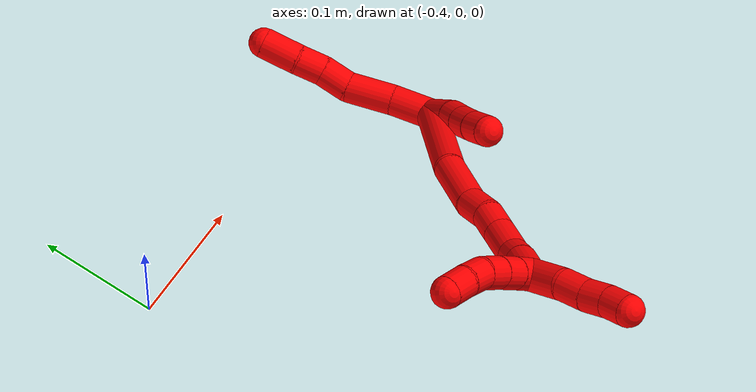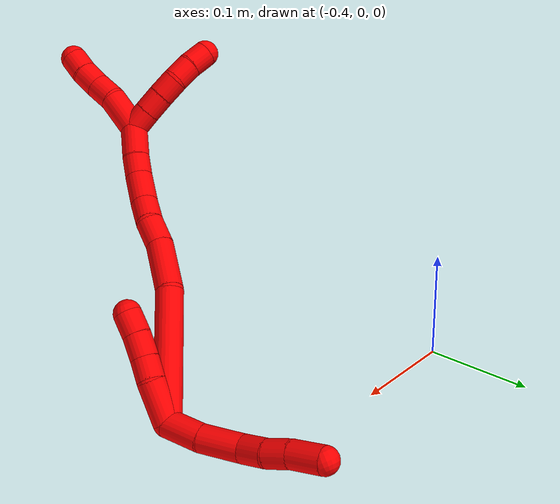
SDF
<sdf version="1.7">
 <world name="default">
  <model name="photoneo_s_sensor">
   <static>1</static>
   <pose>0 0 2 1.57079 1.57079 3.14159</pose>
   <link name="link">
    <inertial><mass>0.1</mass></inertial>
    <sensor name="sensor" type="depth">
     <update_rate>30</update_rate>
     <camera>
      <horizontal_fov>1.22</horizontal_fov>
      <image><width>1920</width><height>1200</height><format>B8G8R8</format></image>
      <clip><near>0.1</near><far>4</far></clip>
      <depth_camera><output>points</output></depth_camera>
     </camera>
     <plugin name="camera_plugin" filename="libgazebo_ros_depth_camera.so">
      <baseline>0.2</baseline>
      <alwaysOn>1</alwaysOn>
      <updateRate>0.0</updateRate>
      <cameraName>camera_ir</cameraName>
      <imageTopicName>/camera/color/image_raw</imageTopicName>
      <cameraInfoTopicName>/camera/color/camera_info</cameraInfoTopicName>
      <depthImageTopicName>/camera/depth/image_raw</depthImageTopicName>
      <depthImageCameraInfoTopicName>/camera/depth/camera_info</depthImageCameraInfoTopicName>
      <pointCloudTopicName>/camera/depth/points</pointCloudTopicName>
      <frameName>fr_optical</frameName>
      <pointCloudCutoff>0.1</pointCloudCutoff>
      <pointCloudCutoffMax>2.0</pointCloudCutoffMax>
      <distortionK1>0</distortionK1>
      <distortionK2>0</distortionK2>
      <distortionK3>0</distortionK3>
      <distortionT1>0</distortionT1>
      <distortionT2>0</distortionT2>
      <CxPrime>0</CxPrime>
      <Cx>0</Cx>
      <Cy>0</Cy>
      <focalLength>0</focalLength>
      <hackBaseline>0</hackBaseline>
     </plugin>
    </sensor>
   </link>
  </model>
  <model name="bin">
   <static>1</static>
   <link name="bottom">
    <collision name="collision-bottom">
     <pose>0 0 -0.01 0 -0 0</pose>
     <geometry><box><size>0.8 0.6 0.02</size></box></geometry>
     <surface>
      <friction><ode><mu>100</mu><mu2>100</mu2></ode></friction>
      <contact><collide_bitmask>65535</collide_bitmask></contact>
     </surface>
    </collision>
   </link>
   <link name="west_wall">
    <collision name="collision-west_wall">
     <pose>-0.41 0 0.1 0 -0 0</pose>
     <geometry><box><size>0.02 0.6 0.2</size></box></geometry>
     <surface>
      <friction><ode><mu>100</mu><mu2>100</mu2></ode></friction>
      <contact><collide_bitmask>65535</collide_bitmask></contact>
     </surface>
    </collision>
   </link>
   <link name="east_wall">
    <collision name="collision-east_wall">
     <pose>0.41 0 0.1 0 -0 0</pose>
     <geometry><box><size>0.02 0.6 0.2</size></box></geometry>
     <surface>
      <friction><ode><mu>100</mu><mu2>100</mu2></ode></friction>
      <contact><collide_bitmask>65535</collide_bitmask></contact>
     </surface>
    </collision>
   </link>
   <link name="south_wall">
    <collision name="collision-south_wall">
     <pose>0 -0.31 0.1 0 -0 0</pose>
     <geometry><box><size>0.8 0.02 0.2</size></box></geometry>
     <surface>
      <friction><ode><mu>100</mu><mu2>100</mu2></ode></friction>
      <contact><collide_bitmask>65535</collide_bitmask></contact>
     </surface>
    </collision>
   </link>
   <link name="north_wall">
    <collision name="collision-north_wall">
     <pose>0 0.31 0.1 0 -0 0</pose>
     <geometry><box><size>0.8 0.02 0.2</size></box></geometry>
     <surface>
      <friction><ode><mu>100</mu><mu2>100</mu2></ode></friction>
      <contact><collide_bitmask>65535</collide_bitmask></contact>
     </surface>
    </collision>
   </link>
  </model>
  <model name="2">
   <static>0</static>
   <link name="2">
    <collision name="collision-cylinder-e_1_2_8">
     <pose>-0.004199 0.012578 -0.010666 -2.27415 -0.249298 0.528443</pose>
     <geometry><cylinder><radius>0.0125</radius><length>0.034035</length></cylinder></geometry>
     <surface>
      <friction><ode><mu>1.16</mu><mu2>1.16</mu2><slip1>0</slip1><slip2>0</slip2></ode></friction>
      <contact><ode><kp>1e+06</kp><kd>1</kd><max_vel>0</max_vel><min_depth>0.001</min_depth></ode></contact>
     </surface>
    </collision>
    <visual name="visual-cylinder-e_1_2_8">
     <pose>-0.004199 0.012578 -0.010666 -2.27415 -0.249298 0.528443</pose>
     <geometry><cylinder><radius>0.0125</radius><length>0.034035</length></cylinder></geometry>
     <material><ambient>1 0 0 1</ambient></material>
    </visual>
    <collision name="collision-cylinder-e_2_8_9">
     <pose>-0.015344 0.040091 -0.031378 -2.16289 -0.368304 0.672904</pose>
     <geometry><cylinder><radius>0.0125</radius><length>0.038587</length></cylinder></geometry>
     <surface>
      <friction><ode><mu>1.16</mu><mu2>1.16</mu2><slip1>0</slip1><slip2>0</slip2></ode></friction>
      <contact><ode><kp>1e+06</kp><kd>1</kd><max_vel>0</max_vel><min_depth>0.001</min_depth></ode></contact>
     </surface>
    </collision>
    <visual name="visual-cylinder-e_2_8_9">
     <pose>-0.015344 0.040091 -0.031378 -2.16289 -0.368304 0.672904</pose>
     <geometry><cylinder><radius>0.0125</radius><length>0.038587</length></cylinder></geometry>
     <material><ambient>1 0 0 1</ambient></material>
    </visual>
    <collision name="collision-cylinder-e_3_9_10">
     <pose>-0.02376 0.066192 -0.046122 -1.96913 -0.120772 0.181577</pose>
     <geometry><cylinder><radius>0.0125</radius><length>0.024405</length></cylinder></geometry>
     <surface>
      <friction><ode><mu>1.16</mu><mu2>1.16</mu2><slip1>0</slip1><slip2>0</slip2></ode></friction>
      <contact><ode><kp>1e+06</kp><kd>1</kd><max_vel>0</max_vel><min_depth>0.001</min_depth></ode></contact>
     </surface>
    </collision>
    <visual name="visual-cylinder-e_3_9_10">
     <pose>-0.02376 0.066192 -0.046122 -1.96913 -0.120772 0.181577</pose>
     <geometry><cylinder><radius>0.0125</radius><length>0.024405</length></cylinder></geometry>
     <material><ambient>1 0 0 1</ambient></material>
    </visual>
    <collision name="collision-cylinder-e_4_10_11">
     <pose>-0.028659 0.087509 -0.054242 -1.89585 -0.309797 0.428142</pose>
     <geometry><cylinder><radius>0.0125</radius><length>0.022497</length></cylinder></geometry>
     <surface>
      <friction><ode><mu>1.16</mu><mu2>1.16</mu2><slip1>0</slip1><slip2>0</slip2></ode></friction>
      <contact><ode><kp>1e+06</kp><kd>1</kd><max_vel>0</max_vel><min_depth>0.001</min_depth></ode></contact>
     </surface>
    </collision>
    <visual name="visual-cylinder-e_4_10_11">
     <pose>-0.028659 0.087509 -0.054242 -1.89585 -0.309797 0.428142</pose>
     <geometry><cylinder><radius>0.0125</radius><length>0.022497</length></cylinder></geometry>
     <material><ambient>1 0 0 1</ambient></material>
    </visual>
    <collision name="collision-cylinder-e_5_11_6">
     <pose>-0.035583 0.111019 -0.064111 -2.02048 -0.231353 0.366066</pose>
     <geometry><cylinder><radius>0.0125</radius><length>0.030476</length></cylinder></geometry>
     <surface>
      <friction><ode><mu>1.16</mu><mu2>1.16</mu2><slip1>0</slip1><slip2>0</slip2></ode></friction>
      <contact><ode><kp>1e+06</kp><kd>1</kd><max_vel>0</max_vel><min_depth>0.001</min_depth></ode></contact>
     </surface>
    </collision>
    <visual name="visual-cylinder-e_5_11_6">
     <pose>-0.035583 0.111019 -0.064111 -2.02048 -0.231353 0.366066</pose>
     <geometry><cylinder><radius>0.0125</radius><length>0.030476</length></cylinder></geometry>
     <material><ambient>1 0 0 1</ambient></material>
    </visual>
    <collision name="collision-cylinder-e_1_2_12">
     <pose>-0.000221 -0.000451 0.018875 0.023872 -0.011704 -0.00014</pose>
     <geometry><cylinder><radius>0.0125</radius><length>0.037763</length></cylinder></geometry>
     <surface>
      <friction><ode><mu>1.16</mu><mu2>1.16</mu2><slip1>0</slip1><slip2>0</slip2></ode></friction>
      <contact><ode><kp>1e+06</kp><kd>1</kd><max_vel>0</max_vel><min_depth>0.001</min_depth></ode></contact>
     </surface>
    </collision>
    <visual name="visual-cylinder-e_1_2_12">
     <pose>-0.000221 -0.000451 0.018875 0.023872 -0.011704 -0.00014</pose>
     <geometry><cylinder><radius>0.0125</radius><length>0.037763</length></cylinder></geometry>
     <material><ambient>1 0 0 1</ambient></material>
    </visual>
    <collision name="collision-cylinder-e_2_12_13">
     <pose>-0.00232 -0.00215 0.04751 0.127265 -0.188589 -0.012052</pose>
     <geometry><cylinder><radius>0.0125</radius><length>0.020036</length></cylinder></geometry>
     <surface>
      <friction><ode><mu>1.16</mu><mu2>1.16</mu2><slip1>0</slip1><slip2>0</slip2></ode></friction>
      <contact><ode><kp>1e+06</kp><kd>1</kd><max_vel>0</max_vel><min_depth>0.001</min_depth></ode></contact>
     </surface>
    </collision>
    <visual name="visual-cylinder-e_2_12_13">
     <pose>-0.00232 -0.00215 0.04751 0.127265 -0.188589 -0.012052</pose>
     <geometry><cylinder><radius>0.0125</radius><length>0.020036</length></cylinder></geometry>
     <material><ambient>1 0 0 1</ambient></material>
    </visual>
    <collision name="collision-cylinder-e_3_13_14">
     <pose>-0.005698 -0.004767 0.06794 0.127465 -0.138548 -0.008856</pose>
     <geometry><cylinder><radius>0.0125</radius><length>0.021721</length></cylinder></geometry>
     <surface>
      <friction><ode><mu>1.16</mu><mu2>1.16</mu2><slip1>0</slip1><slip2>0</slip2></ode></friction>
      <contact><ode><kp>1e+06</kp><kd>1</kd><max_vel>0</max_vel><min_depth>0.001</min_depth></ode></contact>
     </surface>
    </collision>
    <visual name="visual-cylinder-e_3_13_14">
     <pose>-0.005698 -0.004767 0.06794 0.127465 -0.138548 -0.008856</pose>
     <geometry><cylinder><radius>0.0125</radius><length>0.021721</length></cylinder></geometry>
     <material><ambient>1 0 0 1</ambient></material>
    </visual>
    <collision name="collision-cylinder-e_4_14_5">
     <pose>-0.007891 -0.00791 0.088671 0.174729 -0.067682 -0.00593</pose>
     <geometry><cylinder><radius>0.0125</radius><length>0.02048</length></cylinder></geometry>
     <surface>
      <friction><ode><mu>1.16</mu><mu2>1.16</mu2><slip1>0</slip1><slip2>0</slip2></ode></friction>
      <contact><ode><kp>1e+06</kp><kd>1</kd><max_vel>0</max_vel><min_depth>0.001</min_depth></ode></contact>
     </surface>
    </collision>
    <visual name="visual-cylinder-e_4_14_5">
     <pose>-0.007891 -0.00791 0.088671 0.174729 -0.067682 -0.00593</pose>
     <geometry><cylinder><radius>0.0125</radius><length>0.02048</length></cylinder></geometry>
     <material><ambient>1 0 0 1</ambient></material>
    </visual>
    <collision name="collision-cylinder-e_1_2_15">
     <pose>-0.027298 -0.001665 0.052958 0.03143 -0.47574 -0.007621</pose>
     <geometry><cylinder><radius>0.0125</radius><length>0.119205</length></cylinder></geometry>
     <surface>
      <friction><ode><mu>1.16</mu><mu2>1.16</mu2><slip1>0</slip1><slip2>0</slip2></ode></friction>
      <contact><ode><kp>1e+06</kp><kd>1</kd><max_vel>0</max_vel><min_depth>0.001</min_depth></ode></contact>
     </surface>
    </collision>
    <visual name="visual-cylinder-e_1_2_15">
     <pose>-0.027298 -0.001665 0.052958 0.03143 -0.47574 -0.007621</pose>
     <geometry><cylinder><radius>0.0125</radius><length>0.119205</length></cylinder></geometry>
     <material><ambient>1 0 0 1</ambient></material>
    </visual>
    <collision name="collision-cylinder-e_2_15_16">
     <pose>-0.064739 -0.011321 0.127371 0.35652 -0.417059 -0.076214</pose>
     <geometry><cylinder><radius>0.0125</radius><length>0.050083</length></cylinder></geometry>
     <surface>
      <friction><ode><mu>1.16</mu><mu2>1.16</mu2><slip1>0</slip1><slip2>0</slip2></ode></friction>
      <contact><ode><kp>1e+06</kp><kd>1</kd><max_vel>0</max_vel><min_depth>0.001</min_depth></ode></contact>
     </surface>
    </collision>
    <visual name="visual-cylinder-e_2_15_16">
     <pose>-0.064739 -0.011321 0.127371 0.35652 -0.417059 -0.076214</pose>
     <geometry><cylinder><radius>0.0125</radius><length>0.050083</length></cylinder></geometry>
     <material><ambient>1 0 0 1</ambient></material>
    </visual>
    <collision name="collision-cylinder-e_3_16_17">
     <pose>-0.077181 -0.023206 0.160795 0.314603 -0.180558 -0.028715</pose>
     <geometry><cylinder><radius>0.0125</radius><length>0.025588</length></cylinder></geometry>
     <surface>
      <friction><ode><mu>1.16</mu><mu2>1.16</mu2><slip1>0</slip1><slip2>0</slip2></ode></friction>
      <contact><ode><kp>1e+06</kp><kd>1</kd><max_vel>0</max_vel><min_depth>0.001</min_depth></ode></contact>
     </surface>
    </collision>
    <visual name="visual-cylinder-e_3_16_17">
     <pose>-0.077181 -0.023206 0.160795 0.314603 -0.180558 -0.028715</pose>
     <geometry><cylinder><radius>0.0125</radius><length>0.025588</length></cylinder></geometry>
     <material><ambient>1 0 0 1</ambient></material>
    </visual>
    <collision name="collision-cylinder-e_4_17_18">
     <pose>-0.084052 -0.031573 0.182468 0.431824 -0.404438 -0.089874</pose>
     <geometry><cylinder><radius>0.0125</radius><length>0.023246</length></cylinder></geometry>
     <surface>
      <friction><ode><mu>1.16</mu><mu2>1.16</mu2><slip1>0</slip1><slip2>0</slip2></ode></friction>
      <contact><ode><kp>1e+06</kp><kd>1</kd><max_vel>0</max_vel><min_depth>0.001</min_depth></ode></contact>
     </surface>
    </collision>
    <visual name="visual-cylinder-e_4_17_18">
     <pose>-0.084052 -0.031573 0.182468 0.431824 -0.404438 -0.089874</pose>
     <geometry><cylinder><radius>0.0125</radius><length>0.023246</length></cylinder></geometry>
     <material><ambient>1 0 0 1</ambient></material>
    </visual>
    <collision name="collision-cylinder-e_5_18_19">
     <pose>-0.094752 -0.040557 0.205929 0.316918 -0.400304 -0.064813</pose>
     <geometry><cylinder><radius>0.0125</radius><length>0.031442</length></cylinder></geometry>
     <surface>
      <friction><ode><mu>1.16</mu><mu2>1.16</mu2><slip1>0</slip1><slip2>0</slip2></ode></friction>
      <contact><ode><kp>1e+06</kp><kd>1</kd><max_vel>0</max_vel><min_depth>0.001</min_depth></ode></contact>
     </surface>
    </collision>
    <visual name="visual-cylinder-e_5_18_19">
     <pose>-0.094752 -0.040557 0.205929 0.316918 -0.400304 -0.064813</pose>
     <geometry><cylinder><radius>0.0125</radius><length>0.031442</length></cylinder></geometry>
     <material><ambient>1 0 0 1</ambient></material>
    </visual>
    <collision name="collision-cylinder-e_6_19_20">
     <pose>-0.103657 -0.045343 0.22941 0.028181 -0.278273 -0.003947</pose>
     <geometry><cylinder><radius>0.0125</radius><length>0.020235</length></cylinder></geometry>
     <surface>
      <friction><ode><mu>1.16</mu><mu2>1.16</mu2><slip1>0</slip1><slip2>0</slip2></ode></friction>
      <contact><ode><kp>1e+06</kp><kd>1</kd><max_vel>0</max_vel><min_depth>0.001</min_depth></ode></contact>
     </surface>
    </collision>
    <visual name="visual-cylinder-e_6_19_20">
     <pose>-0.103657 -0.045343 0.22941 0.028181 -0.278273 -0.003947</pose>
     <geometry><cylinder><radius>0.0125</radius><length>0.020235</length></cylinder></geometry>
     <material><ambient>1 0 0 1</ambient></material>
    </visual>
    <collision name="collision-cylinder-e_7_20_1">
     <pose>-0.112041 -0.046103 0.253148 0.034665 -0.380267 -0.006672</pose>
     <geometry><cylinder><radius>0.0125</radius><length>0.030201</length></cylinder></geometry>
     <surface>
      <friction><ode><mu>1.16</mu><mu2>1.16</mu2><slip1>0</slip1><slip2>0</slip2></ode></friction>
      <contact><ode><kp>1e+06</kp><kd>1</kd><max_vel>0</max_vel><min_depth>0.001</min_depth></ode></contact>
     </surface>
    </collision>
    <visual name="visual-cylinder-e_7_20_1">
     <pose>-0.112041 -0.046103 0.253148 0.034665 -0.380267 -0.006672</pose>
     <geometry><cylinder><radius>0.0125</radius><length>0.030201</length></cylinder></geometry>
     <material><ambient>1 0 0 1</ambient></material>
    </visual>
    <collision name="collision-cylinder-e_1_1_21">
     <pose>-0.123182 -0.039704 0.271847 -0.973232 -0.586615 0.316886</pose>
     <geometry><cylinder><radius>0.0125</radius><length>0.02</length></cylinder></geometry>
     <surface>
      <friction><ode><mu>1.16</mu><mu2>1.16</mu2><slip1>0</slip1><slip2>0</slip2></ode></friction>
      <contact><ode><kp>1e+06</kp><kd>1</kd><max_vel>0</max_vel><min_depth>0.001</min_depth></ode></contact>
     </surface>
    </collision>
    <visual name="visual-cylinder-e_1_1_21">
     <pose>-0.123182 -0.039704 0.271847 -0.973232 -0.586615 0.316886</pose>
     <geometry><cylinder><radius>0.0125</radius><length>0.02</length></cylinder></geometry>
     <material><ambient>1 0 0 1</ambient></material>
    </visual>
    <collision name="collision-cylinder-e_2_21_22">
     <pose>-0.134466 -0.025992 0.281044 -0.986891 -0.612498 0.336892</pose>
     <geometry><cylinder><radius>0.0125</radius><length>0.02</length></cylinder></geometry>
     <surface>
      <friction><ode><mu>1.16</mu><mu2>1.16</mu2><slip1>0</slip1><slip2>0</slip2></ode></friction>
      <contact><ode><kp>1e+06</kp><kd>1</kd><max_vel>0</max_vel><min_depth>0.001</min_depth></ode></contact>
     </surface>
    </collision>
    <visual name="visual-cylinder-e_2_21_22">
     <pose>-0.134466 -0.025992 0.281044 -0.986891 -0.612498 0.336892</pose>
     <geometry><cylinder><radius>0.0125</radius><length>0.02</length></cylinder></geometry>
     <material><ambient>1 0 0 1</ambient></material>
    </visual>
    <collision name="collision-cylinder-e_3_22_23">
     <pose>-0.146368 -0.012591 0.289905 -0.986223 -0.662652 0.365605</pose>
     <geometry><cylinder><radius>0.0125</radius><length>0.02</length></cylinder></geometry>
     <surface>
      <friction><ode><mu>1.16</mu><mu2>1.16</mu2><slip1>0</slip1><slip2>0</slip2></ode></friction>
      <contact><ode><kp>1e+06</kp><kd>1</kd><max_vel>0</max_vel><min_depth>0.001</min_depth></ode></contact>
     </surface>
    </collision>
    <visual name="visual-cylinder-e_3_22_23">
     <pose>-0.146368 -0.012591 0.289905 -0.986223 -0.662652 0.365605</pose>
     <geometry><cylinder><radius>0.0125</radius><length>0.02</length></cylinder></geometry>
     <material><ambient>1 0 0 1</ambient></material>
    </visual>
    <collision name="collision-cylinder-e_4_23_24">
     <pose>-0.160357 -0.001557 0.298578 -0.800955 -0.900669 0.403782</pose>
     <geometry><cylinder><radius>0.0125</radius><length>0.02</length></cylinder></geometry>
     <surface>
      <friction><ode><mu>1.16</mu><mu2>1.16</mu2><slip1>0</slip1><slip2>0</slip2></ode></friction>
      <contact><ode><kp>1e+06</kp><kd>1</kd><max_vel>0</max_vel><min_depth>0.001</min_depth></ode></contact>
     </surface>
    </collision>
    <visual name="visual-cylinder-e_4_23_24">
     <pose>-0.160357 -0.001557 0.298578 -0.800955 -0.900669 0.403782</pose>
     <geometry><cylinder><radius>0.0125</radius><length>0.02</length></cylinder></geometry>
     <material><ambient>1 0 0 1</ambient></material>
    </visual>
    <collision name="collision-cylinder-e_5_24_4">
     <pose>-0.176802 0.006749 0.306236 -0.856573 -1.03667 0.509473</pose>
     <geometry><cylinder><radius>0.0125</radius><length>0.02</length></cylinder></geometry>
     <surface>
      <friction><ode><mu>1.16</mu><mu2>1.16</mu2><slip1>0</slip1><slip2>0</slip2></ode></friction>
      <contact><ode><kp>1e+06</kp><kd>1</kd><max_vel>0</max_vel><min_depth>0.001</min_depth></ode></contact>
     </surface>
    </collision>
    <visual name="visual-cylinder-e_5_24_4">
     <pose>-0.176802 0.006749 0.306236 -0.856573 -1.03667 0.509473</pose>
     <geometry><cylinder><radius>0.0125</radius><length>0.02</length></cylinder></geometry>
     <material><ambient>1 0 0 1</ambient></material>
    </visual>
    <collision name="collision-cylinder-e_1_1_25">
     <pose>-0.116543 -0.052193 0.284742 0.308572 0.059743 0.009294</pose>
     <geometry><cylinder><radius>0.0125</radius><length>0.036971</length></cylinder></geometry>
     <surface>
      <friction><ode><mu>1.16</mu><mu2>1.16</mu2><slip1>0</slip1><slip2>0</slip2></ode></friction>
      <contact><ode><kp>1e+06</kp><kd>1</kd><max_vel>0</max_vel><min_depth>0.001</min_depth></ode></contact>
     </surface>
    </collision>
    <visual name="visual-cylinder-e_1_1_25">
     <pose>-0.116543 -0.052193 0.284742 0.308572 0.059743 0.009294</pose>
     <geometry><cylinder><radius>0.0125</radius><length>0.036971</length></cylinder></geometry>
     <material><ambient>1 0 0 1</ambient></material>
    </visual>
    <collision name="collision-cylinder-e_2_25_26">
     <pose>-0.11475 -0.06386 0.311673 0.575323 0.061745 0.018274</pose>
     <geometry><cylinder><radius>0.0125</radius><length>0.02233</length></cylinder></geometry>
     <surface>
      <friction><ode><mu>1.16</mu><mu2>1.16</mu2><slip1>0</slip1><slip2>0</slip2></ode></friction>
      <contact><ode><kp>1e+06</kp><kd>1</kd><max_vel>0</max_vel><min_depth>0.001</min_depth></ode></contact>
     </surface>
    </collision>
    <visual name="visual-cylinder-e_2_25_26">
     <pose>-0.11475 -0.06386 0.311673 0.575323 0.061745 0.018274</pose>
     <geometry><cylinder><radius>0.0125</radius><length>0.02233</length></cylinder></geometry>
     <material><ambient>1 0 0 1</ambient></material>
    </visual>
    <collision name="collision-cylinder-e_3_26_27">
     <pose>-0.112604 -0.074341 0.330187 0.449201 0.142226 0.032544</pose>
     <geometry><cylinder><radius>0.0125</radius><length>0.020553</length></cylinder></geometry>
     <surface>
      <friction><ode><mu>1.16</mu><mu2>1.16</mu2><slip1>0</slip1><slip2>0</slip2></ode></friction>
      <contact><ode><kp>1e+06</kp><kd>1</kd><max_vel>0</max_vel><min_depth>0.001</min_depth></ode></contact>
     </surface>
    </collision>
    <visual name="visual-cylinder-e_3_26_27">
     <pose>-0.112604 -0.074341 0.330187 0.449201 0.142226 0.032544</pose>
     <geometry><cylinder><radius>0.0125</radius><length>0.020553</length></cylinder></geometry>
     <material><ambient>1 0 0 1</ambient></material>
    </visual>
    <collision name="collision-cylinder-e_4_27_3">
     <pose>-0.111277 -0.082677 0.348629 0.399554 -0.012834 -0.002599</pose>
     <geometry><cylinder><radius>0.0125</radius><length>0.020146</length></cylinder></geometry>
     <surface>
      <friction><ode><mu>1.16</mu><mu2>1.16</mu2><slip1>0</slip1><slip2>0</slip2></ode></friction>
      <contact><ode><kp>1e+06</kp><kd>1</kd><max_vel>0</max_vel><min_depth>0.001</min_depth></ode></contact>
     </surface>
    </collision>
    <visual name="visual-cylinder-e_4_27_3">
     <pose>-0.111277 -0.082677 0.348629 0.399554 -0.012834 -0.002599</pose>
     <geometry><cylinder><radius>0.0125</radius><length>0.020146</length></cylinder></geometry>
     <material><ambient>1 0 0 1</ambient></material>
    </visual>
    <collision name="collision-sphere-3">
     <pose>-0.111406 -0.086595 0.357908 0 -0 0</pose>
     <geometry><sphere><radius>0.0125</radius></sphere></geometry>
     <surface>
      <friction><ode><mu>1.16</mu><mu2>1.16</mu2><slip1>0</slip1><slip2>0</slip2></ode></friction>
      <contact><ode><kp>1e+06</kp><kd>1</kd><max_vel>0</max_vel><min_depth>0.001</min_depth></ode></contact>
     </surface>
    </collision>
    <visual name="visual-sphere-3">
     <pose>-0.111406 -0.086595 0.357908 0 -0 0</pose>
     <geometry><sphere><radius>0.0125</radius></sphere></geometry>
     <material><ambient>1 0 0 1</ambient></material>
    </visual>
    <collision name="collision-sphere-27">
     <pose>-0.111148 -0.078759 0.33935 0 -0 0</pose>
     <geometry><sphere><radius>0.0125</radius></sphere></geometry>
     <surface>
      <friction><ode><mu>1.16</mu><mu2>1.16</mu2><slip1>0</slip1><slip2>0</slip2></ode></friction>
      <contact><ode><kp>1e+06</kp><kd>1</kd><max_vel>0</max_vel><min_depth>0.001</min_depth></ode></contact>
     </surface>
    </collision>
    <visual name="visual-sphere-27">
     <pose>-0.111148 -0.078759 0.33935 0 -0 0</pose>
     <geometry><sphere><radius>0.0125</radius></sphere></geometry>
     <material><ambient>1 0 0 1</ambient></material>
    </visual>
    <collision name="collision-sphere-26">
     <pose>-0.114061 -0.069924 0.321023 0 -0 0</pose>
     <geometry><sphere><radius>0.0125</radius></sphere></geometry>
     <surface>
      <friction><ode><mu>1.16</mu><mu2>1.16</mu2><slip1>0</slip1><slip2>0</slip2></ode></friction>
      <contact><ode><kp>1e+06</kp><kd>1</kd><max_vel>0</max_vel><min_depth>0.001</min_depth></ode></contact>
     </surface>
    </collision>
    <visual name="visual-sphere-26">
     <pose>-0.114061 -0.069924 0.321023 0 -0 0</pose>
     <geometry><sphere><radius>0.0125</radius></sphere></geometry>
     <material><ambient>1 0 0 1</ambient></material>
    </visual>
    <collision name="collision-sphere-25">
     <pose>-0.115439 -0.057797 0.302324 0 -0 0</pose>
     <geometry><sphere><radius>0.0125</radius></sphere></geometry>
     <surface>
      <friction><ode><mu>1.16</mu><mu2>1.16</mu2><slip1>0</slip1><slip2>0</slip2></ode></friction>
      <contact><ode><kp>1e+06</kp><kd>1</kd><max_vel>0</max_vel><min_depth>0.001</min_depth></ode></contact>
     </surface>
    </collision>
    <visual name="visual-sphere-25">
     <pose>-0.115439 -0.057797 0.302324 0 -0 0</pose>
     <geometry><sphere><radius>0.0125</radius></sphere></geometry>
     <material><ambient>1 0 0 1</ambient></material>
    </visual>
    <collision name="collision-sphere-4">
     <pose>-0.185409 0.010596 0.30957 0 -0 0</pose>
     <geometry><sphere><radius>0.0125</radius></sphere></geometry>
     <surface>
      <friction><ode><mu>1.16</mu><mu2>1.16</mu2><slip1>0</slip1><slip2>0</slip2></ode></friction>
      <contact><ode><kp>1e+06</kp><kd>1</kd><max_vel>0</max_vel><min_depth>0.001</min_depth></ode></contact>
     </surface>
    </collision>
    <visual name="visual-sphere-4">
     <pose>-0.185409 0.010596 0.30957 0 -0 0</pose>
     <geometry><sphere><radius>0.0125</radius></sphere></geometry>
     <material><ambient>1 0 0 1</ambient></material>
    </visual>
    <collision name="collision-sphere-24">
     <pose>-0.168194 0.002902 0.302901 0 -0 0</pose>
     <geometry><sphere><radius>0.0125</radius></sphere></geometry>
     <surface>
      <friction><ode><mu>1.16</mu><mu2>1.16</mu2><slip1>0</slip1><slip2>0</slip2></ode></friction>
      <contact><ode><kp>1e+06</kp><kd>1</kd><max_vel>0</max_vel><min_depth>0.001</min_depth></ode></contact>
     </surface>
    </collision>
    <visual name="visual-sphere-24">
     <pose>-0.168194 0.002902 0.302901 0 -0 0</pose>
     <geometry><sphere><radius>0.0125</radius></sphere></geometry>
     <material><ambient>1 0 0 1</ambient></material>
    </visual>
    <collision name="collision-sphere-23">
     <pose>-0.15252 -0.006017 0.294255 0 -0 0</pose>
     <geometry><sphere><radius>0.0125</radius></sphere></geometry>
     <surface>
      <friction><ode><mu>1.16</mu><mu2>1.16</mu2><slip1>0</slip1><slip2>0</slip2></ode></friction>
      <contact><ode><kp>1e+06</kp><kd>1</kd><max_vel>0</max_vel><min_depth>0.001</min_depth></ode></contact>
     </surface>
    </collision>
    <visual name="visual-sphere-23">
     <pose>-0.15252 -0.006017 0.294255 0 -0 0</pose>
     <geometry><sphere><radius>0.0125</radius></sphere></geometry>
     <material><ambient>1 0 0 1</ambient></material>
    </visual>
    <collision name="collision-sphere-22">
     <pose>-0.140215 -0.019166 0.285554 0 -0 0</pose>
     <geometry><sphere><radius>0.0125</radius></sphere></geometry>
     <surface>
      <friction><ode><mu>1.16</mu><mu2>1.16</mu2><slip1>0</slip1><slip2>0</slip2></ode></friction>
      <contact><ode><kp>1e+06</kp><kd>1</kd><max_vel>0</max_vel><min_depth>0.001</min_depth></ode></contact>
     </surface>
    </collision>
    <visual name="visual-sphere-22">
     <pose>-0.140215 -0.019166 0.285554 0 -0 0</pose>
     <geometry><sphere><radius>0.0125</radius></sphere></geometry>
     <material><ambient>1 0 0 1</ambient></material>
    </visual>
    <collision name="collision-sphere-21">
     <pose>-0.128717 -0.032819 0.276533 0 -0 0</pose>
     <geometry><sphere><radius>0.0125</radius></sphere></geometry>
     <surface>
      <friction><ode><mu>1.16</mu><mu2>1.16</mu2><slip1>0</slip1><slip2>0</slip2></ode></friction>
      <contact><ode><kp>1e+06</kp><kd>1</kd><max_vel>0</max_vel><min_depth>0.001</min_depth></ode></contact>
     </surface>
    </collision>
    <visual name="visual-sphere-21">
     <pose>-0.128717 -0.032819 0.276533 0 -0 0</pose>
     <geometry><sphere><radius>0.0125</radius></sphere></geometry>
     <material><ambient>1 0 0 1</ambient></material>
    </visual>
    <collision name="collision-sphere-1">
     <pose>-0.117646 -0.046589 0.267161 0 -0 0</pose>
     <geometry><sphere><radius>0.0125</radius></sphere></geometry>
     <surface>
      <friction><ode><mu>1.16</mu><mu2>1.16</mu2><slip1>0</slip1><slip2>0</slip2></ode></friction>
      <contact><ode><kp>1e+06</kp><kd>1</kd><max_vel>0</max_vel><min_depth>0.001</min_depth></ode></contact>
     </surface>
    </collision>
    <visual name="visual-sphere-1">
     <pose>-0.117646 -0.046589 0.267161 0 -0 0</pose>
     <geometry><sphere><radius>0.0125</radius></sphere></geometry>
     <material><ambient>1 0 0 1</ambient></material>
    </visual>
    <collision name="collision-sphere-6">
     <pose>-0.039077 0.124376 -0.070558 0 -0 0</pose>
     <geometry><sphere><radius>0.0125</radius></sphere></geometry>
     <surface>
      <friction><ode><mu>1.16</mu><mu2>1.16</mu2><slip1>0</slip1><slip2>0</slip2></ode></friction>
      <contact><ode><kp>1e+06</kp><kd>1</kd><max_vel>0</max_vel><min_depth>0.001</min_depth></ode></contact>
     </surface>
    </collision>
    <visual name="visual-sphere-6">
     <pose>-0.039077 0.124376 -0.070558 0 -0 0</pose>
     <geometry><sphere><radius>0.0125</radius></sphere></geometry>
     <material><ambient>1 0 0 1</ambient></material>
    </visual>
    <collision name="collision-sphere-11">
     <pose>-0.032089 0.097661 -0.057664 0 -0 0</pose>
     <geometry><sphere><radius>0.0125</radius></sphere></geometry>
     <surface>
      <friction><ode><mu>1.16</mu><mu2>1.16</mu2><slip1>0</slip1><slip2>0</slip2></ode></friction>
      <contact><ode><kp>1e+06</kp><kd>1</kd><max_vel>0</max_vel><min_depth>0.001</min_depth></ode></contact>
     </surface>
    </collision>
    <visual name="visual-sphere-11">
     <pose>-0.032089 0.097661 -0.057664 0 -0 0</pose>
     <geometry><sphere><radius>0.0125</radius></sphere></geometry>
     <material><ambient>1 0 0 1</ambient></material>
    </visual>
    <collision name="collision-sphere-10">
     <pose>-0.02523 0.077357 -0.050821 0 -0 0</pose>
     <geometry><sphere><radius>0.0125</radius></sphere></geometry>
     <surface>
      <friction><ode><mu>1.16</mu><mu2>1.16</mu2><slip1>0</slip1><slip2>0</slip2></ode></friction>
      <contact><ode><kp>1e+06</kp><kd>1</kd><max_vel>0</max_vel><min_depth>0.001</min_depth></ode></contact>
     </surface>
    </collision>
    <visual name="visual-sphere-10">
     <pose>-0.02523 0.077357 -0.050821 0 -0 0</pose>
     <geometry><sphere><radius>0.0125</radius></sphere></geometry>
     <material><ambient>1 0 0 1</ambient></material>
    </visual>
    <collision name="collision-sphere-9">
     <pose>-0.02229 0.055027 -0.041424 0 -0 0</pose>
     <geometry><sphere><radius>0.0125</radius></sphere></geometry>
     <surface>
      <friction><ode><mu>1.16</mu><mu2>1.16</mu2><slip1>0</slip1><slip2>0</slip2></ode></friction>
      <contact><ode><kp>1e+06</kp><kd>1</kd><max_vel>0</max_vel><min_depth>0.001</min_depth></ode></contact>
     </surface>
    </collision>
    <visual name="visual-sphere-9">
     <pose>-0.02229 0.055027 -0.041424 0 -0 0</pose>
     <geometry><sphere><radius>0.0125</radius></sphere></geometry>
     <material><ambient>1 0 0 1</ambient></material>
    </visual>
    <collision name="collision-sphere-2">
     <geometry><sphere><radius>0.0125</radius></sphere></geometry>
     <surface>
      <friction><ode><mu>1.16</mu><mu2>1.16</mu2><slip1>0</slip1><slip2>0</slip2></ode></friction>
      <contact><ode><kp>1e+06</kp><kd>1</kd><max_vel>0</max_vel><min_depth>0.001</min_depth></ode></contact>
     </surface>
    </collision>
    <visual name="visual-sphere-2">
     <geometry><sphere><radius>0.0125</radius></sphere></geometry>
     <material><ambient>1 0 0 1</ambient></material>
    </visual>
    <collision name="collision-sphere-19">
     <pose>-0.100878 -0.045069 0.219686 0 -0 0</pose>
     <geometry><sphere><radius>0.0125</radius></sphere></geometry>
     <surface>
      <friction><ode><mu>1.16</mu><mu2>1.16</mu2><slip1>0</slip1><slip2>0</slip2></ode></friction>
      <contact><ode><kp>1e+06</kp><kd>1</kd><max_vel>0</max_vel><min_depth>0.001</min_depth></ode></contact>
     </surface>
    </collision>
    <visual name="visual-sphere-19">
     <pose>-0.100878 -0.045069 0.219686 0 -0 0</pose>
     <geometry><sphere><radius>0.0125</radius></sphere></geometry>
     <material><ambient>1 0 0 1</ambient></material>
    </visual>
    <collision name="collision-sphere-8">
     <pose>-0.008397 0.025155 -0.021333 0 -0 0</pose>
     <geometry><sphere><radius>0.0125</radius></sphere></geometry>
     <surface>
      <friction><ode><mu>1.16</mu><mu2>1.16</mu2><slip1>0</slip1><slip2>0</slip2></ode></friction>
      <contact><ode><kp>1e+06</kp><kd>1</kd><max_vel>0</max_vel><min_depth>0.001</min_depth></ode></contact>
     </surface>
    </collision>
    <visual name="visual-sphere-8">
     <pose>-0.008397 0.025155 -0.021333 0 -0 0</pose>
     <geometry><sphere><radius>0.0125</radius></sphere></geometry>
     <material><ambient>1 0 0 1</ambient></material>
    </visual>
    <collision name="collision-sphere-12">
     <pose>-0.000442 -0.000901 0.03775 0 -0 0</pose>
     <geometry><sphere><radius>0.0125</radius></sphere></geometry>
     <surface>
      <friction><ode><mu>1.16</mu><mu2>1.16</mu2><slip1>0</slip1><slip2>0</slip2></ode></friction>
      <contact><ode><kp>1e+06</kp><kd>1</kd><max_vel>0</max_vel><min_depth>0.001</min_depth></ode></contact>
     </surface>
    </collision>
    <visual name="visual-sphere-12">
     <pose>-0.000442 -0.000901 0.03775 0 -0 0</pose>
     <geometry><sphere><radius>0.0125</radius></sphere></geometry>
     <material><ambient>1 0 0 1</ambient></material>
    </visual>
    <collision name="collision-sphere-13">
     <pose>-0.004198 -0.003399 0.057271 0 -0 0</pose>
     <geometry><sphere><radius>0.0125</radius></sphere></geometry>
     <surface>
      <friction><ode><mu>1.16</mu><mu2>1.16</mu2><slip1>0</slip1><slip2>0</slip2></ode></friction>
      <contact><ode><kp>1e+06</kp><kd>1</kd><max_vel>0</max_vel><min_depth>0.001</min_depth></ode></contact>
     </surface>
    </collision>
    <visual name="visual-sphere-13">
     <pose>-0.004198 -0.003399 0.057271 0 -0 0</pose>
     <geometry><sphere><radius>0.0125</radius></sphere></geometry>
     <material><ambient>1 0 0 1</ambient></material>
    </visual>
    <collision name="collision-sphere-14">
     <pose>-0.007198 -0.006134 0.07861 0 -0 0</pose>
     <geometry><sphere><radius>0.0125</radius></sphere></geometry>
     <surface>
      <friction><ode><mu>1.16</mu><mu2>1.16</mu2><slip1>0</slip1><slip2>0</slip2></ode></friction>
      <contact><ode><kp>1e+06</kp><kd>1</kd><max_vel>0</max_vel><min_depth>0.001</min_depth></ode></contact>
     </surface>
    </collision>
    <visual name="visual-sphere-14">
     <pose>-0.007198 -0.006134 0.07861 0 -0 0</pose>
     <geometry><sphere><radius>0.0125</radius></sphere></geometry>
     <material><ambient>1 0 0 1</ambient></material>
    </visual>
    <collision name="collision-sphere-5">
     <pose>-0.008583 -0.009686 0.098732 0 -0 0</pose>
     <geometry><sphere><radius>0.0125</radius></sphere></geometry>
     <surface>
      <friction><ode><mu>1.16</mu><mu2>1.16</mu2><slip1>0</slip1><slip2>0</slip2></ode></friction>
      <contact><ode><kp>1e+06</kp><kd>1</kd><max_vel>0</max_vel><min_depth>0.001</min_depth></ode></contact>
     </surface>
    </collision>
    <visual name="visual-sphere-5">
     <pose>-0.008583 -0.009686 0.098732 0 -0 0</pose>
     <geometry><sphere><radius>0.0125</radius></sphere></geometry>
     <material><ambient>1 0 0 1</ambient></material>
    </visual>
    <collision name="collision-sphere-15">
     <pose>-0.054596 -0.00333 0.105916 0 -0 0</pose>
     <geometry><sphere><radius>0.0125</radius></sphere></geometry>
     <surface>
      <friction><ode><mu>1.16</mu><mu2>1.16</mu2><slip1>0</slip1><slip2>0</slip2></ode></friction>
      <contact><ode><kp>1e+06</kp><kd>1</kd><max_vel>0</max_vel><min_depth>0.001</min_depth></ode></contact>
     </surface>
    </collision>
    <visual name="visual-sphere-15">
     <pose>-0.054596 -0.00333 0.105916 0 -0 0</pose>
     <geometry><sphere><radius>0.0125</radius></sphere></geometry>
     <material><ambient>1 0 0 1</ambient></material>
    </visual>
    <collision name="collision-sphere-16">
     <pose>-0.074883 -0.019312 0.148827 0 -0 0</pose>
     <geometry><sphere><radius>0.0125</radius></sphere></geometry>
     <surface>
      <friction><ode><mu>1.16</mu><mu2>1.16</mu2><slip1>0</slip1><slip2>0</slip2></ode></friction>
      <contact><ode><kp>1e+06</kp><kd>1</kd><max_vel>0</max_vel><min_depth>0.001</min_depth></ode></contact>
     </surface>
    </collision>
    <visual name="visual-sphere-16">
     <pose>-0.074883 -0.019312 0.148827 0 -0 0</pose>
     <geometry><sphere><radius>0.0125</radius></sphere></geometry>
     <material><ambient>1 0 0 1</ambient></material>
    </visual>
    <collision name="collision-sphere-17">
     <pose>-0.079478 -0.027101 0.172763 0 -0 0</pose>
     <geometry><sphere><radius>0.0125</radius></sphere></geometry>
     <surface>
      <friction><ode><mu>1.16</mu><mu2>1.16</mu2><slip1>0</slip1><slip2>0</slip2></ode></friction>
      <contact><ode><kp>1e+06</kp><kd>1</kd><max_vel>0</max_vel><min_depth>0.001</min_depth></ode></contact>
     </surface>
    </collision>
    <visual name="visual-sphere-17">
     <pose>-0.079478 -0.027101 0.172763 0 -0 0</pose>
     <geometry><sphere><radius>0.0125</radius></sphere></geometry>
     <material><ambient>1 0 0 1</ambient></material>
    </visual>
    <collision name="collision-sphere-18">
     <pose>-0.088625 -0.036045 0.192172 0 -0 0</pose>
     <geometry><sphere><radius>0.0125</radius></sphere></geometry>
     <surface>
      <friction><ode><mu>1.16</mu><mu2>1.16</mu2><slip1>0</slip1><slip2>0</slip2></ode></friction>
      <contact><ode><kp>1e+06</kp><kd>1</kd><max_vel>0</max_vel><min_depth>0.001</min_depth></ode></contact>
     </surface>
    </collision>
    <visual name="visual-sphere-18">
     <pose>-0.088625 -0.036045 0.192172 0 -0 0</pose>
     <geometry><sphere><radius>0.0125</radius></sphere></geometry>
     <material><ambient>1 0 0 1</ambient></material>
    </visual>
    <collision name="collision-sphere-20">
     <pose>-0.106437 -0.045617 0.239135 0 -0 0</pose>
     <geometry><sphere><radius>0.0125</radius></sphere></geometry>
     <surface>
      <friction><ode><mu>1.16</mu><mu2>1.16</mu2><slip1>0</slip1><slip2>0</slip2></ode></friction>
      <contact><ode><kp>1e+06</kp><kd>1</kd><max_vel>0</max_vel><min_depth>0.001</min_depth></ode></contact>
     </surface>
    </collision>
    <visual name="visual-sphere-20">
     <pose>-0.106437 -0.045617 0.239135 0 -0 0</pose>
     <geometry><sphere><radius>0.0125</radius></sphere></geometry>
     <material><ambient>1 0 0 1</ambient></material>
    </visual>
    <inertial>
     <pose>-0.064694 -0.006763 0.132189 0 -0 0</pose>
     <mass>0.75</mass>
     <inertia>
      <ixx>0.000185</ixx>
      <ixy>0</ixy>
      <ixz>0</ixz>
      <iyy>0.000204</iyy>
      <iyz>0</iyz>
      <izz>0.000116</izz>
     </inertia>
    </inertial>
   </link>
   <pose>-0.136369 -0.091667 0.015824 0.623841 -0.087355 -0.085615</pose>
  </model>
 </world>
</sdf>
